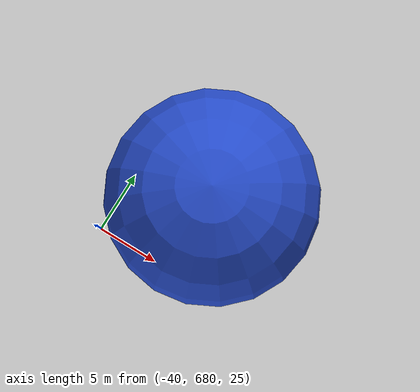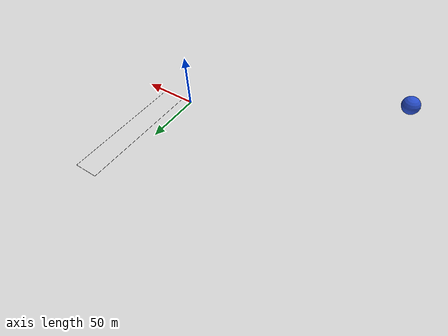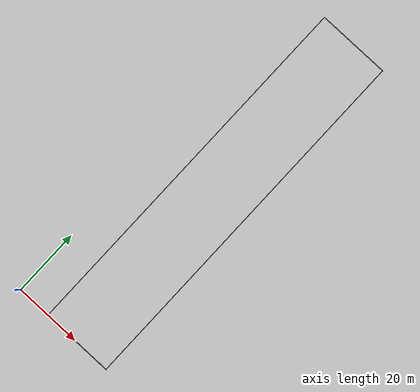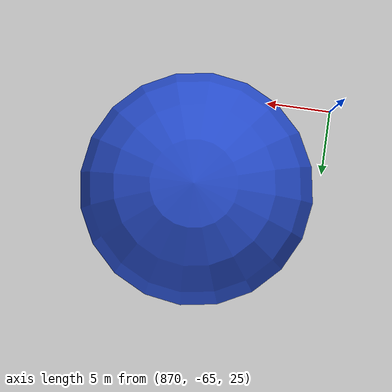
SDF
<sdf version="1.7">
 <world name="default">
  <light name="sun" type="directional">
   <pose>0 0 10 0 -0 0</pose>
   <diffuse>0.8 0.8 0.8 1</diffuse>
   <specular>0.2 0.2 0.2 1</specular>
   <attenuation>
    <range>1000</range>
    <constant>0.9</constant>
    <linear>0.01</linear>
    <quadratic>0.001</quadratic>
   </attenuation>
   <direction>-0.5 0.1 -0.9</direction>
   <spot><inner_angle>0</inner_angle><outer_angle>0</outer_angle><falloff>0</falloff></spot>
  </light>
  <model name="ground_plane">
   <static>1</static>
   <link name="link">
    <collision name="collision">
     <geometry><plane><normal>0 0 1</normal><size>250 250</size></plane></geometry>
     <surface>
      <contact><collide_bitmask>65535</collide_bitmask></contact>
      <friction><ode><mu>100</mu><mu2>50</mu2></ode></friction>
     </surface>
    </collision>
    <visual name="visual">
     <cast_shadows>0</cast_shadows>
     <geometry><plane><normal>0 0 1</normal><size>250 250</size></plane></geometry>
     <material>
      <script><uri>file://media/materials/scripts/gazebo.material</uri><name>Gazebo/Grey</name></script>
     </material>
    </visual>
   </link>
  </model>
  <physics name="default_physics" default="0" type="ode">
   <ode>
    <solver>
     <type>quick</type>
     <iters>10</iters>
     <sor>1.3</sor>
     <use_dynamic_moi_rescaling>0</use_dynamic_moi_rescaling>
    </solver>
    <constraints>
     <cfm>0</cfm>
     <erp>0.2</erp>
     <contact_max_correcting_vel>100</contact_max_correcting_vel>
     <contact_surface_layer>0.001</contact_surface_layer>
    </constraints>
   </ode>
   <max_step_size>0.004</max_step_size>
   <real_time_factor>1</real_time_factor>
   <real_time_update_rate>250</real_time_update_rate>
  </physics>
  <gravity>0 0 -9.8066</gravity>
  <magnetic_field>6e-06 2.3e-05 -4.2e-05</magnetic_field>
  <atmosphere type="adiabatic"/>
  <scene><ambient>0.4 0.4 0.4 1</ambient><background>0.7 0.7 0.7 1</background><shadows>1</shadows></scene>
  <spherical_coordinates>
   <surface_model>EARTH_WGS84</surface_model>
   <world_frame_orientation>ENU</world_frame_orientation>
   <latitude_deg>0</latitude_deg>
   <longitude_deg>0</longitude_deg>
   <elevation>0</elevation>
   <heading_deg>0</heading_deg>
  </spherical_coordinates>
  <model name="drop_boundary">
   <static>true</static>
   <link name="line1">
    <visual name="visual_line1">
     <geometry><cylinder><radius>0.1</radius><length>21.366</length></cylinder></geometry>
     <material>
      <script><uri>file://media/materials/scripts/gazebo.material</uri><name>Gazebo/Black</name></script>
     </material>
    </visual>
    <pose>20.863 0 0 0 1.5708 0</pose>
   </link>
   <link name="line2">
    <visual name="visual_line2">
     <geometry><cylinder><radius>0.1</radius><length>109.728</length></cylinder></geometry>
     <material>
      <script><uri>file://media/materials/scripts/gazebo.material</uri><name>Gazebo/Black</name></script>
     </material>
    </visual>
    <pose>31.366 54.864 0 1.5708 0 0</pose>
   </link>
   <link name="line3">
    <visual name="visual_line3">
     <geometry><cylinder><radius>0.1</radius><length>21.366</length></cylinder></geometry>
     <material>
      <script><uri>file://media/materials/scripts/gazebo.material</uri><name>Gazebo/Black</name></script>
     </material>
    </visual>
    <pose>20.863 109.728 0 0 -1.5708 0</pose>
   </link>
   <link name="line4">
    <visual name="visual_line4">
     <geometry><cylinder><radius>0.1</radius><length>109.728</length></cylinder></geometry>
     <material>
      <script><uri>file://media/materials/scripts/gazebo.material</uri><name>Gazebo/Black</name></script>
     </material>
    </visual>
    <pose>10 54.864 0 -1.5708 0 0</pose>
   </link>
  </model>
  <model name="user_way_Point_2">
   <static>1</static>
   <pose>-33.353161274008215 686.0095076146638 34.51581724351868 0 -0 0</pose>
   <link name="link">
    <gravity>0</gravity>
    <inertial>
     <mass>1</mass>
     <inertia><ixx>0.0001</ixx><ixy>0</ixy><ixz>0</ixz><iyy>0.0001</iyy><iyz>0</iyz><izz>0.0001</izz></inertia>
    </inertial>
    <collision name="collision">
     <geometry><sphere><radius>7.62</radius></sphere></geometry>
     <surface><contact><collide_without_contact>1</collide_without_contact></contact></surface>
    </collision>
    <visual name="visual">
     <geometry><sphere><radius>7.62</radius></sphere></geometry>
     <material>
      <script><name>Gazebo/Blue</name><uri>file://media/materials/scripts/gazebo.material</uri></script>
     </material>
    </visual>
   </link>
  </model>
  <model name="user_way_Point_3">
   <static>1</static>
   <pose>-670.8357531529497 420.02840221935503 36.71321095619202 0 -0 0</pose>
   <link name="link">
    <gravity>0</gravity>
    <inertial>
     <mass>1</mass>
     <inertia><ixx>0.0001</ixx><ixy>0</ixy><ixz>0</ixz><iyy>0.0001</iyy><iyz>0</iyz><izz>0.0001</izz></inertia>
    </inertial>
    <collision name="collision">
     <geometry><sphere><radius>7.62</radius></sphere></geometry>
     <surface><contact><collide_without_contact>1</collide_without_contact></contact></surface>
    </collision>
    <visual name="visual">
     <geometry><sphere><radius>7.62</radius></sphere></geometry>
     <material>
      <script><name>Gazebo/Blue</name><uri>file://media/materials/scripts/gazebo.material</uri></script>
     </material>
    </visual>
   </link>
  </model>
  <model name="user_way_Point_4">
   <static>1</static>
   <pose>-180.58649837376183 -64.29651028767292 33.89274882591516 0 -0 0</pose>
   <link name="link">
    <gravity>0</gravity>
    <inertial>
     <mass>1</mass>
     <inertia><ixx>0.0001</ixx><ixy>0</ixy><ixz>0</ixz><iyy>0.0001</iyy><iyz>0</iyz><izz>0.0001</izz></inertia>
    </inertial>
    <collision name="collision">
     <geometry><sphere><radius>7.62</radius></sphere></geometry>
     <surface><contact><collide_without_contact>1</collide_without_contact></contact></surface>
    </collision>
    <visual name="visual">
     <geometry><sphere><radius>7.62</radius></sphere></geometry>
     <material>
      <script><name>Gazebo/Blue</name><uri>file://media/materials/scripts/gazebo.material</uri></script>
     </material>
    </visual>
   </link>
  </model>
  <model name="user_way_Point_5">
   <static>1</static>
   <pose>346.3889116911337 380.3478657194803 33.30025899666846 0 -0 0</pose>
   <link name="link">
    <gravity>0</gravity>
    <inertial>
     <mass>1</mass>
     <inertia><ixx>0.0001</ixx><ixy>0</ixy><ixz>0</ixz><iyy>0.0001</iyy><iyz>0</iyz><izz>0.0001</izz></inertia>
    </inertial>
    <collision name="collision">
     <geometry><sphere><radius>7.62</radius></sphere></geometry>
     <surface><contact><collide_without_contact>1</collide_without_contact></contact></surface>
    </collision>
    <visual name="visual">
     <geometry><sphere><radius>7.62</radius></sphere></geometry>
     <material>
      <script><name>Gazebo/Blue</name><uri>file://media/materials/scripts/gazebo.material</uri></script>
     </material>
    </visual>
   </link>
  </model>
  <model name="user_way_Point_6">
   <static>1</static>
   <pose>879.3191087984985 -57.236915214675676 31.669018459991367 0 -0 0</pose>
   <link name="link">
    <gravity>0</gravity>
    <inertial>
     <mass>1</mass>
     <inertia><ixx>0.0001</ixx><ixy>0</ixy><ixz>0</ixz><iyy>0.0001</iyy><iyz>0</iyz><izz>0.0001</izz></inertia>
    </inertial>
    <collision name="collision">
     <geometry><sphere><radius>7.62</radius></sphere></geometry>
     <surface><contact><collide_without_contact>1</collide_without_contact></contact></surface>
    </collision>
    <visual name="visual">
     <geometry><sphere><radius>7.62</radius></sphere></geometry>
     <material>
      <script><name>Gazebo/Blue</name><uri>file://media/materials/scripts/gazebo.material</uri></script>
     </material>
    </visual>
   </link>
  </model>
  <model name="user_way_Point_7">
   <static>1</static>
   <pose>1269.910131897366 -623.9674237624238 36.05620262515247 0 -0 0</pose>
   <link name="link">
    <gravity>0</gravity>
    <inertial>
     <mass>1</mass>
     <inertia><ixx>0.0001</ixx><ixy>0</ixy><ixz>0</ixz><iyy>0.0001</iyy><iyz>0</iyz><izz>0.0001</izz></inertia>
    </inertial>
    <collision name="collision">
     <geometry><sphere><radius>7.62</radius></sphere></geometry>
     <surface><contact><collide_without_contact>1</collide_without_contact></contact></surface>
    </collision>
    <visual name="visual">
     <geometry><sphere><radius>7.62</radius></sphere></geometry>
     <material>
      <script><name>Gazebo/Blue</name><uri>file://media/materials/scripts/gazebo.material</uri></script>
     </material>
    </visual>
   </link>
  </model>
  <model name="user_way_Point_8">
   <static>1</static>
   <pose>652.1952554533452 -932.5565697300677 36.47517004331053 0 -0 0</pose>
   <link name="link">
    <gravity>0</gravity>
    <inertial>
     <mass>1</mass>
     <inertia><ixx>0.0001</ixx><ixy>0</ixy><ixz>0</ixz><iyy>0.0001</iyy><iyz>0</iyz><izz>0.0001</izz></inertia>
    </inertial>
    <collision name="collision">
     <geometry><sphere><radius>7.62</radius></sphere></geometry>
     <surface><contact><collide_without_contact>1</collide_without_contact></contact></surface>
    </collision>
    <visual name="visual">
     <geometry><sphere><radius>7.62</radius></sphere></geometry>
     <material>
      <script><name>Gazebo/Blue</name><uri>file://media/materials/scripts/gazebo.material</uri></script>
     </material>
    </visual>
   </link>
  </model>
 </world>
</sdf>
